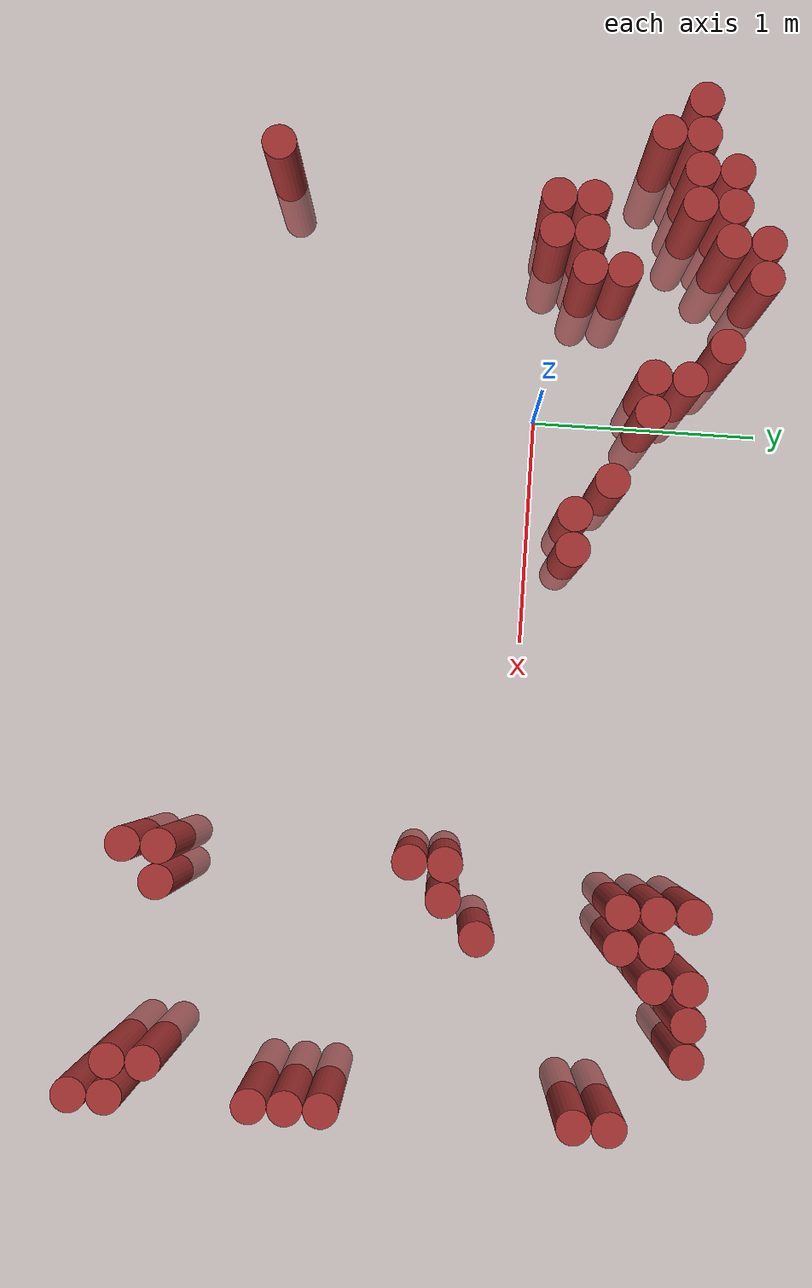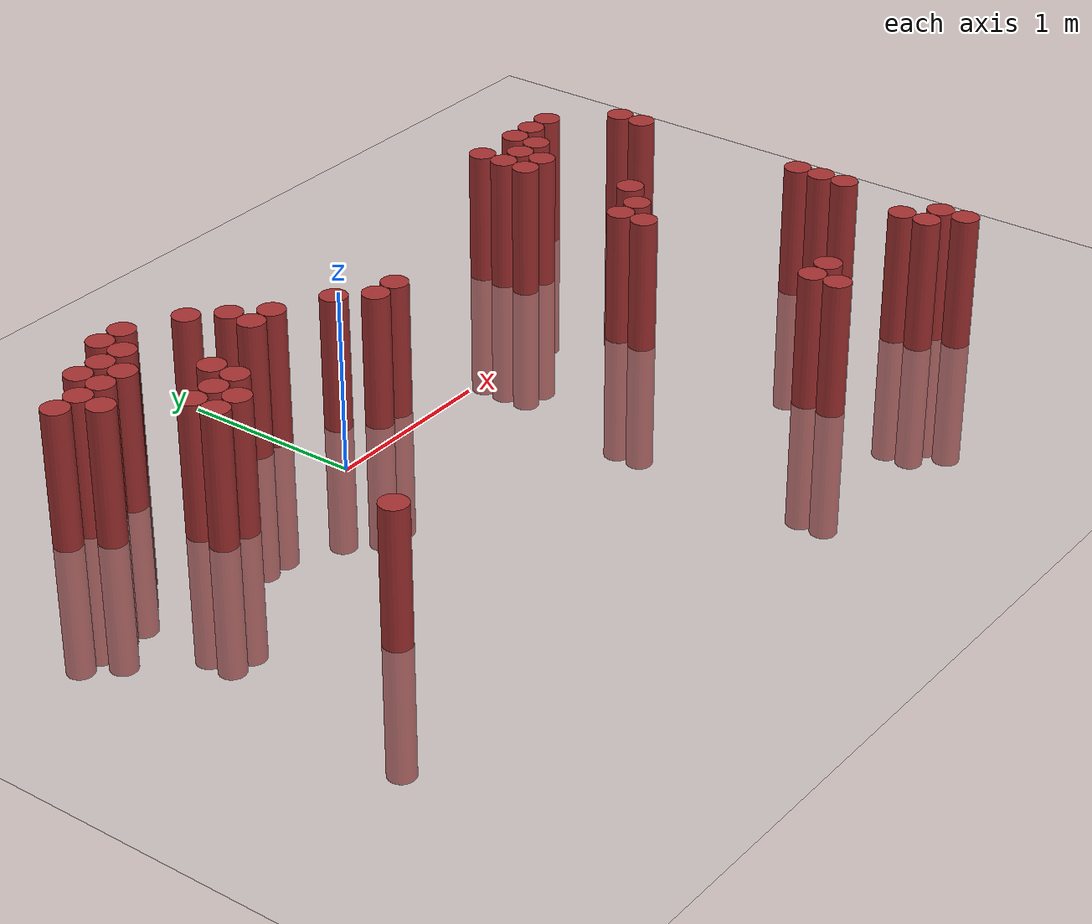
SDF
<sdf version="1.6">
 <world name="default">
  <model name="ground_plane">
   <static>1</static>
   <link name="link">
    <collision name="collision">
     <geometry><plane><normal>0 0 1</normal><size>100 100</size></plane></geometry>
     <surface><friction><ode><mu>100</mu><mu2>50</mu2></ode></friction></surface>
    </collision>
    <visual name="visual">
     <cast_shadows>0</cast_shadows>
     <geometry><plane><normal>0 0 1</normal><size>100 100</size></plane></geometry>
     <material>
      <script><uri>file://media/materials/scripts/gazebo.material</uri><name>Gazebo/Grey</name></script>
     </material>
    </visual>
   </link>
  </model>
  <model name="unit_cylinder_341">
   <static>1</static>
   <pose>-1.325000 0.625000 0.000000 0.000000 0.000000 0.000000</pose>
   <link name="link">
    <inertial>
     <mass>1</mass>
     <inertia><ixx>0.145833</ixx><ixy>0</ixy><ixz>0</ixz><iyy>0.145833</iyy><iyz>0</iyz><izz>0.125</izz></inertia>
    </inertial>
    <collision name="collision">
     <geometry><cylinder><radius>0.075000</radius><length>1.5</length></cylinder></geometry>
    </collision>
    <visual name="visual">
     <geometry><cylinder><radius>0.075000</radius><length>1.5</length></cylinder></geometry>
     <material>
      <ambient>0.648000 0.192000 0.192000 1</ambient>
      <diffuse>0.648000 0.192000 0.192000 1</diffuse>
     </material>
     <material>
      <script><name>Gazebo/Grey</name><uri>file://media/materials/scripts/gazebo.material</uri></script>
     </material>
    </visual>
   </link>
  </model>
  <model name="unit_cylinder_344">
   <static>1</static>
   <pose>-1.175000 0.475000 0.000000 0.000000 0.000000 0.000000</pose>
   <link name="link">
    <inertial>
     <mass>1</mass>
     <inertia><ixx>0.145833</ixx><ixy>0</ixy><ixz>0</ixz><iyy>0.145833</iyy><iyz>0</iyz><izz>0.125</izz></inertia>
    </inertial>
    <collision name="collision">
     <geometry><cylinder><radius>0.075000</radius><length>1.5</length></cylinder></geometry>
    </collision>
    <visual name="visual">
     <geometry><cylinder><radius>0.075000</radius><length>1.5</length></cylinder></geometry>
     <material>
      <ambient>0.648000 0.192000 0.192000 1</ambient>
      <diffuse>0.648000 0.192000 0.192000 1</diffuse>
     </material>
     <material>
      <script><name>Gazebo/Grey</name><uri>file://media/materials/scripts/gazebo.material</uri></script>
     </material>
    </visual>
   </link>
  </model>
  <model name="unit_cylinder_345">
   <static>1</static>
   <pose>-1.175000 0.625000 0.000000 0.000000 0.000000 0.000000</pose>
   <link name="link">
    <inertial>
     <mass>1</mass>
     <inertia><ixx>0.145833</ixx><ixy>0</ixy><ixz>0</ixz><iyy>0.145833</iyy><iyz>0</iyz><izz>0.125</izz></inertia>
    </inertial>
    <collision name="collision">
     <geometry><cylinder><radius>0.075000</radius><length>1.5</length></cylinder></geometry>
    </collision>
    <visual name="visual">
     <geometry><cylinder><radius>0.075000</radius><length>1.5</length></cylinder></geometry>
     <material>
      <ambient>0.648000 0.192000 0.192000 1</ambient>
      <diffuse>0.648000 0.192000 0.192000 1</diffuse>
     </material>
     <material>
      <script><name>Gazebo/Grey</name><uri>file://media/materials/scripts/gazebo.material</uri></script>
     </material>
    </visual>
   </link>
  </model>
  <model name="unit_cylinder_348">
   <static>1</static>
   <pose>-1.025000 -1.175000 0.000000 0.000000 0.000000 0.000000</pose>
   <link name="link">
    <inertial>
     <mass>1</mass>
     <inertia><ixx>0.145833</ixx><ixy>0</ixy><ixz>0</ixz><iyy>0.145833</iyy><iyz>0</iyz><izz>0.125</izz></inertia>
    </inertial>
    <collision name="collision">
     <geometry><cylinder><radius>0.075000</radius><length>1.5</length></cylinder></geometry>
    </collision>
    <visual name="visual">
     <geometry><cylinder><radius>0.075000</radius><length>1.5</length></cylinder></geometry>
     <material>
      <ambient>0.648000 0.192000 0.192000 1</ambient>
      <diffuse>0.648000 0.192000 0.192000 1</diffuse>
     </material>
     <material>
      <script><name>Gazebo/Grey</name><uri>file://media/materials/scripts/gazebo.material</uri></script>
     </material>
    </visual>
   </link>
  </model>
  <model name="unit_cylinder_349">
   <static>1</static>
   <pose>-1.025000 0.625000 0.000000 0.000000 0.000000 0.000000</pose>
   <link name="link">
    <inertial>
     <mass>1</mass>
     <inertia><ixx>0.145833</ixx><ixy>0</ixy><ixz>0</ixz><iyy>0.145833</iyy><iyz>0</iyz><izz>0.125</izz></inertia>
    </inertial>
    <collision name="collision">
     <geometry><cylinder><radius>0.075000</radius><length>1.5</length></cylinder></geometry>
    </collision>
    <visual name="visual">
     <geometry><cylinder><radius>0.075000</radius><length>1.5</length></cylinder></geometry>
     <material>
      <ambient>0.648000 0.192000 0.192000 1</ambient>
      <diffuse>0.648000 0.192000 0.192000 1</diffuse>
     </material>
     <material>
      <script><name>Gazebo/Grey</name><uri>file://media/materials/scripts/gazebo.material</uri></script>
     </material>
    </visual>
   </link>
  </model>
  <model name="unit_cylinder_350">
   <static>1</static>
   <pose>-1.025000 0.775000 0.000000 0.000000 0.000000 0.000000</pose>
   <link name="link">
    <inertial>
     <mass>1</mass>
     <inertia><ixx>0.145833</ixx><ixy>0</ixy><ixz>0</ixz><iyy>0.145833</iyy><iyz>0</iyz><izz>0.125</izz></inertia>
    </inertial>
    <collision name="collision">
     <geometry><cylinder><radius>0.075000</radius><length>1.5</length></cylinder></geometry>
    </collision>
    <visual name="visual">
     <geometry><cylinder><radius>0.075000</radius><length>1.5</length></cylinder></geometry>
     <material>
      <ambient>0.648000 0.192000 0.192000 1</ambient>
      <diffuse>0.648000 0.192000 0.192000 1</diffuse>
     </material>
     <material>
      <script><name>Gazebo/Grey</name><uri>file://media/materials/scripts/gazebo.material</uri></script>
     </material>
    </visual>
   </link>
  </model>
  <model name="unit_cylinder_353">
   <static>1</static>
   <pose>-0.875000 0.025000 0.000000 0.000000 0.000000 0.000000</pose>
   <link name="link">
    <inertial>
     <mass>1</mass>
     <inertia><ixx>0.145833</ixx><ixy>0</ixy><ixz>0</ixz><iyy>0.145833</iyy><iyz>0</iyz><izz>0.125</izz></inertia>
    </inertial>
    <collision name="collision">
     <geometry><cylinder><radius>0.075000</radius><length>1.5</length></cylinder></geometry>
    </collision>
    <visual name="visual">
     <geometry><cylinder><radius>0.075000</radius><length>1.5</length></cylinder></geometry>
     <material>
      <ambient>0.648000 0.192000 0.192000 1</ambient>
      <diffuse>0.648000 0.192000 0.192000 1</diffuse>
     </material>
     <material>
      <script><name>Gazebo/Grey</name><uri>file://media/materials/scripts/gazebo.material</uri></script>
     </material>
    </visual>
   </link>
  </model>
  <model name="unit_cylinder_354">
   <static>1</static>
   <pose>-0.875000 0.175000 0.000000 0.000000 0.000000 0.000000</pose>
   <link name="link">
    <inertial>
     <mass>1</mass>
     <inertia><ixx>0.145833</ixx><ixy>0</ixy><ixz>0</ixz><iyy>0.145833</iyy><iyz>0</iyz><izz>0.125</izz></inertia>
    </inertial>
    <collision name="collision">
     <geometry><cylinder><radius>0.075000</radius><length>1.5</length></cylinder></geometry>
    </collision>
    <visual name="visual">
     <geometry><cylinder><radius>0.075000</radius><length>1.5</length></cylinder></geometry>
     <material>
      <ambient>0.648000 0.192000 0.192000 1</ambient>
      <diffuse>0.648000 0.192000 0.192000 1</diffuse>
     </material>
     <material>
      <script><name>Gazebo/Grey</name><uri>file://media/materials/scripts/gazebo.material</uri></script>
     </material>
    </visual>
   </link>
  </model>
  <model name="unit_cylinder_355">
   <static>1</static>
   <pose>-0.875000 0.625000 0.000000 0.000000 0.000000 0.000000</pose>
   <link name="link">
    <inertial>
     <mass>1</mass>
     <inertia><ixx>0.145833</ixx><ixy>0</ixy><ixz>0</ixz><iyy>0.145833</iyy><iyz>0</iyz><izz>0.125</izz></inertia>
    </inertial>
    <collision name="collision">
     <geometry><cylinder><radius>0.075000</radius><length>1.5</length></cylinder></geometry>
    </collision>
    <visual name="visual">
     <geometry><cylinder><radius>0.075000</radius><length>1.5</length></cylinder></geometry>
     <material>
      <ambient>0.648000 0.192000 0.192000 1</ambient>
      <diffuse>0.648000 0.192000 0.192000 1</diffuse>
     </material>
     <material>
      <script><name>Gazebo/Grey</name><uri>file://media/materials/scripts/gazebo.material</uri></script>
     </material>
    </visual>
   </link>
  </model>
  <model name="unit_cylinder_356">
   <static>1</static>
   <pose>-0.875000 0.775000 0.000000 0.000000 0.000000 0.000000</pose>
   <link name="link">
    <inertial>
     <mass>1</mass>
     <inertia><ixx>0.145833</ixx><ixy>0</ixy><ixz>0</ixz><iyy>0.145833</iyy><iyz>0</iyz><izz>0.125</izz></inertia>
    </inertial>
    <collision name="collision">
     <geometry><cylinder><radius>0.075000</radius><length>1.5</length></cylinder></geometry>
    </collision>
    <visual name="visual">
     <geometry><cylinder><radius>0.075000</radius><length>1.5</length></cylinder></geometry>
     <material>
      <ambient>0.648000 0.192000 0.192000 1</ambient>
      <diffuse>0.648000 0.192000 0.192000 1</diffuse>
     </material>
     <material>
      <script><name>Gazebo/Grey</name><uri>file://media/materials/scripts/gazebo.material</uri></script>
     </material>
    </visual>
   </link>
  </model>
  <model name="unit_cylinder_358">
   <static>1</static>
   <pose>-0.725000 0.025000 0.000000 0.000000 0.000000 0.000000</pose>
   <link name="link">
    <inertial>
     <mass>1</mass>
     <inertia><ixx>0.145833</ixx><ixy>0</ixy><ixz>0</ixz><iyy>0.145833</iyy><iyz>0</iyz><izz>0.125</izz></inertia>
    </inertial>
    <collision name="collision">
     <geometry><cylinder><radius>0.075000</radius><length>1.5</length></cylinder></geometry>
    </collision>
    <visual name="visual">
     <geometry><cylinder><radius>0.075000</radius><length>1.5</length></cylinder></geometry>
     <material>
      <ambient>0.648000 0.192000 0.192000 1</ambient>
      <diffuse>0.648000 0.192000 0.192000 1</diffuse>
     </material>
     <material>
      <script><name>Gazebo/Grey</name><uri>file://media/materials/scripts/gazebo.material</uri></script>
     </material>
    </visual>
   </link>
  </model>
  <model name="unit_cylinder_359">
   <static>1</static>
   <pose>-0.725000 0.175000 0.000000 0.000000 0.000000 0.000000</pose>
   <link name="link">
    <inertial>
     <mass>1</mass>
     <inertia><ixx>0.145833</ixx><ixy>0</ixy><ixz>0</ixz><iyy>0.145833</iyy><iyz>0</iyz><izz>0.125</izz></inertia>
    </inertial>
    <collision name="collision">
     <geometry><cylinder><radius>0.075000</radius><length>1.5</length></cylinder></geometry>
    </collision>
    <visual name="visual">
     <geometry><cylinder><radius>0.075000</radius><length>1.5</length></cylinder></geometry>
     <material>
      <ambient>0.648000 0.192000 0.192000 1</ambient>
      <diffuse>0.648000 0.192000 0.192000 1</diffuse>
     </material>
     <material>
      <script><name>Gazebo/Grey</name><uri>file://media/materials/scripts/gazebo.material</uri></script>
     </material>
    </visual>
   </link>
  </model>
  <model name="unit_cylinder_360">
   <static>1</static>
   <pose>-0.725000 0.775000 0.000000 0.000000 0.000000 0.000000</pose>
   <link name="link">
    <inertial>
     <mass>1</mass>
     <inertia><ixx>0.145833</ixx><ixy>0</ixy><ixz>0</ixz><iyy>0.145833</iyy><iyz>0</iyz><izz>0.125</izz></inertia>
    </inertial>
    <collision name="collision">
     <geometry><cylinder><radius>0.075000</radius><length>1.5</length></cylinder></geometry>
    </collision>
    <visual name="visual">
     <geometry><cylinder><radius>0.075000</radius><length>1.5</length></cylinder></geometry>
     <material>
      <ambient>0.648000 0.192000 0.192000 1</ambient>
      <diffuse>0.648000 0.192000 0.192000 1</diffuse>
     </material>
     <material>
      <script><name>Gazebo/Grey</name><uri>file://media/materials/scripts/gazebo.material</uri></script>
     </material>
    </visual>
   </link>
  </model>
  <model name="unit_cylinder_361">
   <static>1</static>
   <pose>-0.725000 0.925000 0.000000 0.000000 0.000000 0.000000</pose>
   <link name="link">
    <inertial>
     <mass>1</mass>
     <inertia><ixx>0.145833</ixx><ixy>0</ixy><ixz>0</ixz><iyy>0.145833</iyy><iyz>0</iyz><izz>0.125</izz></inertia>
    </inertial>
    <collision name="collision">
     <geometry><cylinder><radius>0.075000</radius><length>1.5</length></cylinder></geometry>
    </collision>
    <visual name="visual">
     <geometry><cylinder><radius>0.075000</radius><length>1.5</length></cylinder></geometry>
     <material>
      <ambient>0.648000 0.192000 0.192000 1</ambient>
      <diffuse>0.648000 0.192000 0.192000 1</diffuse>
     </material>
     <material>
      <script><name>Gazebo/Grey</name><uri>file://media/materials/scripts/gazebo.material</uri></script>
     </material>
    </visual>
   </link>
  </model>
  <model name="unit_cylinder_363">
   <static>1</static>
   <pose>-0.575000 0.175000 0.000000 0.000000 0.000000 0.000000</pose>
   <link name="link">
    <inertial>
     <mass>1</mass>
     <inertia><ixx>0.145833</ixx><ixy>0</ixy><ixz>0</ixz><iyy>0.145833</iyy><iyz>0</iyz><izz>0.125</izz></inertia>
    </inertial>
    <collision name="collision">
     <geometry><cylinder><radius>0.075000</radius><length>1.5</length></cylinder></geometry>
    </collision>
    <visual name="visual">
     <geometry><cylinder><radius>0.075000</radius><length>1.5</length></cylinder></geometry>
     <material>
      <ambient>0.648000 0.192000 0.192000 1</ambient>
      <diffuse>0.648000 0.192000 0.192000 1</diffuse>
     </material>
     <material>
      <script><name>Gazebo/Grey</name><uri>file://media/materials/scripts/gazebo.material</uri></script>
     </material>
    </visual>
   </link>
  </model>
  <model name="unit_cylinder_364">
   <static>1</static>
   <pose>-0.575000 0.325000 0.000000 0.000000 0.000000 0.000000</pose>
   <link name="link">
    <inertial>
     <mass>1</mass>
     <inertia><ixx>0.145833</ixx><ixy>0</ixy><ixz>0</ixz><iyy>0.145833</iyy><iyz>0</iyz><izz>0.125</izz></inertia>
    </inertial>
    <collision name="collision">
     <geometry><cylinder><radius>0.075000</radius><length>1.5</length></cylinder></geometry>
    </collision>
    <visual name="visual">
     <geometry><cylinder><radius>0.075000</radius><length>1.5</length></cylinder></geometry>
     <material>
      <ambient>0.648000 0.192000 0.192000 1</ambient>
      <diffuse>0.648000 0.192000 0.192000 1</diffuse>
     </material>
     <material>
      <script><name>Gazebo/Grey</name><uri>file://media/materials/scripts/gazebo.material</uri></script>
     </material>
    </visual>
   </link>
  </model>
  <model name="unit_cylinder_365">
   <static>1</static>
   <pose>-0.575000 0.925000 0.000000 0.000000 0.000000 0.000000</pose>
   <link name="link">
    <inertial>
     <mass>1</mass>
     <inertia><ixx>0.145833</ixx><ixy>0</ixy><ixz>0</ixz><iyy>0.145833</iyy><iyz>0</iyz><izz>0.125</izz></inertia>
    </inertial>
    <collision name="collision">
     <geometry><cylinder><radius>0.075000</radius><length>1.5</length></cylinder></geometry>
    </collision>
    <visual name="visual">
     <geometry><cylinder><radius>0.075000</radius><length>1.5</length></cylinder></geometry>
     <material>
      <ambient>0.648000 0.192000 0.192000 1</ambient>
      <diffuse>0.648000 0.192000 0.192000 1</diffuse>
     </material>
     <material>
      <script><name>Gazebo/Grey</name><uri>file://media/materials/scripts/gazebo.material</uri></script>
     </material>
    </visual>
   </link>
  </model>
  <model name="unit_cylinder_373">
   <static>1</static>
   <pose>-0.275000 0.775000 0.000000 0.000000 0.000000 0.000000</pose>
   <link name="link">
    <inertial>
     <mass>1</mass>
     <inertia><ixx>0.145833</ixx><ixy>0</ixy><ixz>0</ixz><iyy>0.145833</iyy><iyz>0</iyz><izz>0.125</izz></inertia>
    </inertial>
    <collision name="collision">
     <geometry><cylinder><radius>0.075000</radius><length>1.5</length></cylinder></geometry>
    </collision>
    <visual name="visual">
     <geometry><cylinder><radius>0.075000</radius><length>1.5</length></cylinder></geometry>
     <material>
      <ambient>0.648000 0.192000 0.192000 1</ambient>
      <diffuse>0.648000 0.192000 0.192000 1</diffuse>
     </material>
     <material>
      <script><name>Gazebo/Grey</name><uri>file://media/materials/scripts/gazebo.material</uri></script>
     </material>
    </visual>
   </link>
  </model>
  <model name="unit_cylinder_375">
   <static>1</static>
   <pose>-0.125000 0.475000 0.000000 0.000000 0.000000 0.000000</pose>
   <link name="link">
    <inertial>
     <mass>1</mass>
     <inertia><ixx>0.145833</ixx><ixy>0</ixy><ixz>0</ixz><iyy>0.145833</iyy><iyz>0</iyz><izz>0.125</izz></inertia>
    </inertial>
    <collision name="collision">
     <geometry><cylinder><radius>0.075000</radius><length>1.5</length></cylinder></geometry>
    </collision>
    <visual name="visual">
     <geometry><cylinder><radius>0.075000</radius><length>1.5</length></cylinder></geometry>
     <material>
      <ambient>0.648000 0.192000 0.192000 1</ambient>
      <diffuse>0.648000 0.192000 0.192000 1</diffuse>
     </material>
     <material>
      <script><name>Gazebo/Grey</name><uri>file://media/materials/scripts/gazebo.material</uri></script>
     </material>
    </visual>
   </link>
  </model>
  <model name="unit_cylinder_376">
   <static>1</static>
   <pose>-0.125000 0.625000 0.000000 0.000000 0.000000 0.000000</pose>
   <link name="link">
    <inertial>
     <mass>1</mass>
     <inertia><ixx>0.145833</ixx><ixy>0</ixy><ixz>0</ixz><iyy>0.145833</iyy><iyz>0</iyz><izz>0.125</izz></inertia>
    </inertial>
    <collision name="collision">
     <geometry><cylinder><radius>0.075000</radius><length>1.5</length></cylinder></geometry>
    </collision>
    <visual name="visual">
     <geometry><cylinder><radius>0.075000</radius><length>1.5</length></cylinder></geometry>
     <material>
      <ambient>0.648000 0.192000 0.192000 1</ambient>
      <diffuse>0.648000 0.192000 0.192000 1</diffuse>
     </material>
     <material>
      <script><name>Gazebo/Grey</name><uri>file://media/materials/scripts/gazebo.material</uri></script>
     </material>
    </visual>
   </link>
  </model>
  <model name="unit_cylinder_378">
   <static>1</static>
   <pose>0.025000 0.475000 0.000000 0.000000 0.000000 0.000000</pose>
   <link name="link">
    <inertial>
     <mass>1</mass>
     <inertia><ixx>0.145833</ixx><ixy>0</ixy><ixz>0</ixz><iyy>0.145833</iyy><iyz>0</iyz><izz>0.125</izz></inertia>
    </inertial>
    <collision name="collision">
     <geometry><cylinder><radius>0.075000</radius><length>1.5</length></cylinder></geometry>
    </collision>
    <visual name="visual">
     <geometry><cylinder><radius>0.075000</radius><length>1.5</length></cylinder></geometry>
     <material>
      <ambient>0.648000 0.192000 0.192000 1</ambient>
      <diffuse>0.648000 0.192000 0.192000 1</diffuse>
     </material>
     <material>
      <script><name>Gazebo/Grey</name><uri>file://media/materials/scripts/gazebo.material</uri></script>
     </material>
    </visual>
   </link>
  </model>
  <model name="unit_cylinder_386">
   <static>1</static>
   <pose>0.325000 0.325000 0.000000 0.000000 0.000000 0.000000</pose>
   <link name="link">
    <inertial>
     <mass>1</mass>
     <inertia><ixx>0.145833</ixx><ixy>0</ixy><ixz>0</ixz><iyy>0.145833</iyy><iyz>0</iyz><izz>0.125</izz></inertia>
    </inertial>
    <collision name="collision">
     <geometry><cylinder><radius>0.075000</radius><length>1.5</length></cylinder></geometry>
    </collision>
    <visual name="visual">
     <geometry><cylinder><radius>0.075000</radius><length>1.5</length></cylinder></geometry>
     <material>
      <ambient>0.648000 0.192000 0.192000 1</ambient>
      <diffuse>0.648000 0.192000 0.192000 1</diffuse>
     </material>
     <material>
      <script><name>Gazebo/Grey</name><uri>file://media/materials/scripts/gazebo.material</uri></script>
     </material>
    </visual>
   </link>
  </model>
  <model name="unit_cylinder_393">
   <static>1</static>
   <pose>0.475000 0.175000 0.000000 0.000000 0.000000 0.000000</pose>
   <link name="link">
    <inertial>
     <mass>1</mass>
     <inertia><ixx>0.145833</ixx><ixy>0</ixy><ixz>0</ixz><iyy>0.145833</iyy><iyz>0</iyz><izz>0.125</izz></inertia>
    </inertial>
    <collision name="collision">
     <geometry><cylinder><radius>0.075000</radius><length>1.5</length></cylinder></geometry>
    </collision>
    <visual name="visual">
     <geometry><cylinder><radius>0.075000</radius><length>1.5</length></cylinder></geometry>
     <material>
      <ambient>0.648000 0.192000 0.192000 1</ambient>
      <diffuse>0.648000 0.192000 0.192000 1</diffuse>
     </material>
     <material>
      <script><name>Gazebo/Grey</name><uri>file://media/materials/scripts/gazebo.material</uri></script>
     </material>
    </visual>
   </link>
  </model>
  <model name="unit_cylinder_400">
   <static>1</static>
   <pose>0.625000 0.175000 0.000000 0.000000 0.000000 0.000000</pose>
   <link name="link">
    <inertial>
     <mass>1</mass>
     <inertia><ixx>0.145833</ixx><ixy>0</ixy><ixz>0</ixz><iyy>0.145833</iyy><iyz>0</iyz><izz>0.125</izz></inertia>
    </inertial>
    <collision name="collision">
     <geometry><cylinder><radius>0.075000</radius><length>1.5</length></cylinder></geometry>
    </collision>
    <visual name="visual">
     <geometry><cylinder><radius>0.075000</radius><length>1.5</length></cylinder></geometry>
     <material>
      <ambient>0.648000 0.192000 0.192000 1</ambient>
      <diffuse>0.648000 0.192000 0.192000 1</diffuse>
     </material>
     <material>
      <script><name>Gazebo/Grey</name><uri>file://media/materials/scripts/gazebo.material</uri></script>
     </material>
    </visual>
   </link>
  </model>
  <model name="unit_cylinder_420">
   <static>1</static>
   <pose>1.975000 -1.625000 0.000000 0.000000 0.000000 0.000000</pose>
   <link name="link">
    <inertial>
     <mass>1</mass>
     <inertia><ixx>0.145833</ixx><ixy>0</ixy><ixz>0</ixz><iyy>0.145833</iyy><iyz>0</iyz><izz>0.125</izz></inertia>
    </inertial>
    <collision name="collision">
     <geometry><cylinder><radius>0.075000</radius><length>1.5</length></cylinder></geometry>
    </collision>
    <visual name="visual">
     <geometry><cylinder><radius>0.075000</radius><length>1.5</length></cylinder></geometry>
     <material>
      <ambient>0.648000 0.192000 0.192000 1</ambient>
      <diffuse>0.648000 0.192000 0.192000 1</diffuse>
     </material>
     <material>
      <script><name>Gazebo/Grey</name><uri>file://media/materials/scripts/gazebo.material</uri></script>
     </material>
    </visual>
   </link>
  </model>
  <model name="unit_cylinder_421">
   <static>1</static>
   <pose>1.975000 -1.475000 0.000000 0.000000 0.000000 0.000000</pose>
   <link name="link">
    <inertial>
     <mass>1</mass>
     <inertia><ixx>0.145833</ixx><ixy>0</ixy><ixz>0</ixz><iyy>0.145833</iyy><iyz>0</iyz><izz>0.125</izz></inertia>
    </inertial>
    <collision name="collision">
     <geometry><cylinder><radius>0.075000</radius><length>1.5</length></cylinder></geometry>
    </collision>
    <visual name="visual">
     <geometry><cylinder><radius>0.075000</radius><length>1.5</length></cylinder></geometry>
     <material>
      <ambient>0.648000 0.192000 0.192000 1</ambient>
      <diffuse>0.648000 0.192000 0.192000 1</diffuse>
     </material>
     <material>
      <script><name>Gazebo/Grey</name><uri>file://media/materials/scripts/gazebo.material</uri></script>
     </material>
    </visual>
   </link>
  </model>
  <model name="unit_cylinder_422">
   <static>1</static>
   <pose>1.975000 -0.425000 0.000000 0.000000 0.000000 0.000000</pose>
   <link name="link">
    <inertial>
     <mass>1</mass>
     <inertia><ixx>0.145833</ixx><ixy>0</ixy><ixz>0</ixz><iyy>0.145833</iyy><iyz>0</iyz><izz>0.125</izz></inertia>
    </inertial>
    <collision name="collision">
     <geometry><cylinder><radius>0.075000</radius><length>1.5</length></cylinder></geometry>
    </collision>
    <visual name="visual">
     <geometry><cylinder><radius>0.075000</radius><length>1.5</length></cylinder></geometry>
     <material>
      <ambient>0.648000 0.192000 0.192000 1</ambient>
      <diffuse>0.648000 0.192000 0.192000 1</diffuse>
     </material>
     <material>
      <script><name>Gazebo/Grey</name><uri>file://media/materials/scripts/gazebo.material</uri></script>
     </material>
    </visual>
   </link>
  </model>
  <model name="unit_cylinder_423">
   <static>1</static>
   <pose>1.975000 -0.275000 0.000000 0.000000 0.000000 0.000000</pose>
   <link name="link">
    <inertial>
     <mass>1</mass>
     <inertia><ixx>0.145833</ixx><ixy>0</ixy><ixz>0</ixz><iyy>0.145833</iyy><iyz>0</iyz><izz>0.125</izz></inertia>
    </inertial>
    <collision name="collision">
     <geometry><cylinder><radius>0.075000</radius><length>1.5</length></cylinder></geometry>
    </collision>
    <visual name="visual">
     <geometry><cylinder><radius>0.075000</radius><length>1.5</length></cylinder></geometry>
     <material>
      <ambient>0.648000 0.192000 0.192000 1</ambient>
      <diffuse>0.648000 0.192000 0.192000 1</diffuse>
     </material>
     <material>
      <script><name>Gazebo/Grey</name><uri>file://media/materials/scripts/gazebo.material</uri></script>
     </material>
    </visual>
   </link>
  </model>
  <model name="unit_cylinder_424">
   <static>1</static>
   <pose>2.125000 -1.475000 0.000000 0.000000 0.000000 0.000000</pose>
   <link name="link">
    <inertial>
     <mass>1</mass>
     <inertia><ixx>0.145833</ixx><ixy>0</ixy><ixz>0</ixz><iyy>0.145833</iyy><iyz>0</iyz><izz>0.125</izz></inertia>
    </inertial>
    <collision name="collision">
     <geometry><cylinder><radius>0.075000</radius><length>1.5</length></cylinder></geometry>
    </collision>
    <visual name="visual">
     <geometry><cylinder><radius>0.075000</radius><length>1.5</length></cylinder></geometry>
     <material>
      <ambient>0.648000 0.192000 0.192000 1</ambient>
      <diffuse>0.648000 0.192000 0.192000 1</diffuse>
     </material>
     <material>
      <script><name>Gazebo/Grey</name><uri>file://media/materials/scripts/gazebo.material</uri></script>
     </material>
    </visual>
   </link>
  </model>
  <model name="unit_cylinder_425">
   <static>1</static>
   <pose>2.125000 -0.275000 0.000000 0.000000 0.000000 0.000000</pose>
   <link name="link">
    <inertial>
     <mass>1</mass>
     <inertia><ixx>0.145833</ixx><ixy>0</ixy><ixz>0</ixz><iyy>0.145833</iyy><iyz>0</iyz><izz>0.125</izz></inertia>
    </inertial>
    <collision name="collision">
     <geometry><cylinder><radius>0.075000</radius><length>1.5</length></cylinder></geometry>
    </collision>
    <visual name="visual">
     <geometry><cylinder><radius>0.075000</radius><length>1.5</length></cylinder></geometry>
     <material>
      <ambient>0.648000 0.192000 0.192000 1</ambient>
      <diffuse>0.648000 0.192000 0.192000 1</diffuse>
     </material>
     <material>
      <script><name>Gazebo/Grey</name><uri>file://media/materials/scripts/gazebo.material</uri></script>
     </material>
    </visual>
   </link>
  </model>
  <model name="unit_cylinder_426">
   <static>1</static>
   <pose>2.125000 0.475000 0.000000 0.000000 0.000000 0.000000</pose>
   <link name="link">
    <inertial>
     <mass>1</mass>
     <inertia><ixx>0.145833</ixx><ixy>0</ixy><ixz>0</ixz><iyy>0.145833</iyy><iyz>0</iyz><izz>0.125</izz></inertia>
    </inertial>
    <collision name="collision">
     <geometry><cylinder><radius>0.075000</radius><length>1.5</length></cylinder></geometry>
    </collision>
    <visual name="visual">
     <geometry><cylinder><radius>0.075000</radius><length>1.5</length></cylinder></geometry>
     <material>
      <ambient>0.648000 0.192000 0.192000 1</ambient>
      <diffuse>0.648000 0.192000 0.192000 1</diffuse>
     </material>
     <material>
      <script><name>Gazebo/Grey</name><uri>file://media/materials/scripts/gazebo.material</uri></script>
     </material>
    </visual>
   </link>
  </model>
  <model name="unit_cylinder_427">
   <static>1</static>
   <pose>2.125000 0.625000 0.000000 0.000000 0.000000 0.000000</pose>
   <link name="link">
    <inertial>
     <mass>1</mass>
     <inertia><ixx>0.145833</ixx><ixy>0</ixy><ixz>0</ixz><iyy>0.145833</iyy><iyz>0</iyz><izz>0.125</izz></inertia>
    </inertial>
    <collision name="collision">
     <geometry><cylinder><radius>0.075000</radius><length>1.5</length></cylinder></geometry>
    </collision>
    <visual name="visual">
     <geometry><cylinder><radius>0.075000</radius><length>1.5</length></cylinder></geometry>
     <material>
      <ambient>0.648000 0.192000 0.192000 1</ambient>
      <diffuse>0.648000 0.192000 0.192000 1</diffuse>
     </material>
     <material>
      <script><name>Gazebo/Grey</name><uri>file://media/materials/scripts/gazebo.material</uri></script>
     </material>
    </visual>
   </link>
  </model>
  <model name="unit_cylinder_428">
   <static>1</static>
   <pose>2.125000 0.775000 0.000000 0.000000 0.000000 0.000000</pose>
   <link name="link">
    <inertial>
     <mass>1</mass>
     <inertia><ixx>0.145833</ixx><ixy>0</ixy><ixz>0</ixz><iyy>0.145833</iyy><iyz>0</iyz><izz>0.125</izz></inertia>
    </inertial>
    <collision name="collision">
     <geometry><cylinder><radius>0.075000</radius><length>1.5</length></cylinder></geometry>
    </collision>
    <visual name="visual">
     <geometry><cylinder><radius>0.075000</radius><length>1.5</length></cylinder></geometry>
     <material>
      <ambient>0.648000 0.192000 0.192000 1</ambient>
      <diffuse>0.648000 0.192000 0.192000 1</diffuse>
     </material>
     <material>
      <script><name>Gazebo/Grey</name><uri>file://media/materials/scripts/gazebo.material</uri></script>
     </material>
    </visual>
   </link>
  </model>
  <model name="unit_cylinder_430">
   <static>1</static>
   <pose>2.275000 -0.125000 0.000000 0.000000 0.000000 0.000000</pose>
   <link name="link">
    <inertial>
     <mass>1</mass>
     <inertia><ixx>0.145833</ixx><ixy>0</ixy><ixz>0</ixz><iyy>0.145833</iyy><iyz>0</iyz><izz>0.125</izz></inertia>
    </inertial>
    <collision name="collision">
     <geometry><cylinder><radius>0.075000</radius><length>1.5</length></cylinder></geometry>
    </collision>
    <visual name="visual">
     <geometry><cylinder><radius>0.075000</radius><length>1.5</length></cylinder></geometry>
     <material>
      <ambient>0.648000 0.192000 0.192000 1</ambient>
      <diffuse>0.648000 0.192000 0.192000 1</diffuse>
     </material>
     <material>
      <script><name>Gazebo/Grey</name><uri>file://media/materials/scripts/gazebo.material</uri></script>
     </material>
    </visual>
   </link>
  </model>
  <model name="unit_cylinder_431">
   <static>1</static>
   <pose>2.275000 0.475000 0.000000 0.000000 0.000000 0.000000</pose>
   <link name="link">
    <inertial>
     <mass>1</mass>
     <inertia><ixx>0.145833</ixx><ixy>0</ixy><ixz>0</ixz><iyy>0.145833</iyy><iyz>0</iyz><izz>0.125</izz></inertia>
    </inertial>
    <collision name="collision">
     <geometry><cylinder><radius>0.075000</radius><length>1.5</length></cylinder></geometry>
    </collision>
    <visual name="visual">
     <geometry><cylinder><radius>0.075000</radius><length>1.5</length></cylinder></geometry>
     <material>
      <ambient>0.648000 0.192000 0.192000 1</ambient>
      <diffuse>0.648000 0.192000 0.192000 1</diffuse>
     </material>
     <material>
      <script><name>Gazebo/Grey</name><uri>file://media/materials/scripts/gazebo.material</uri></script>
     </material>
    </visual>
   </link>
  </model>
  <model name="unit_cylinder_432">
   <static>1</static>
   <pose>2.275000 0.625000 0.000000 0.000000 0.000000 0.000000</pose>
   <link name="link">
    <inertial>
     <mass>1</mass>
     <inertia><ixx>0.145833</ixx><ixy>0</ixy><ixz>0</ixz><iyy>0.145833</iyy><iyz>0</iyz><izz>0.125</izz></inertia>
    </inertial>
    <collision name="collision">
     <geometry><cylinder><radius>0.075000</radius><length>1.5</length></cylinder></geometry>
    </collision>
    <visual name="visual">
     <geometry><cylinder><radius>0.075000</radius><length>1.5</length></cylinder></geometry>
     <material>
      <ambient>0.648000 0.192000 0.192000 1</ambient>
      <diffuse>0.648000 0.192000 0.192000 1</diffuse>
     </material>
     <material>
      <script><name>Gazebo/Grey</name><uri>file://media/materials/scripts/gazebo.material</uri></script>
     </material>
    </visual>
   </link>
  </model>
  <model name="unit_cylinder_437">
   <static>1</static>
   <pose>2.425000 0.625000 0.000000 0.000000 0.000000 0.000000</pose>
   <link name="link">
    <inertial>
     <mass>1</mass>
     <inertia><ixx>0.145833</ixx><ixy>0</ixy><ixz>0</ixz><iyy>0.145833</iyy><iyz>0</iyz><izz>0.125</izz></inertia>
    </inertial>
    <collision name="collision">
     <geometry><cylinder><radius>0.075000</radius><length>1.5</length></cylinder></geometry>
    </collision>
    <visual name="visual">
     <geometry><cylinder><radius>0.075000</radius><length>1.5</length></cylinder></geometry>
     <material>
      <ambient>0.648000 0.192000 0.192000 1</ambient>
      <diffuse>0.648000 0.192000 0.192000 1</diffuse>
     </material>
     <material>
      <script><name>Gazebo/Grey</name><uri>file://media/materials/scripts/gazebo.material</uri></script>
     </material>
    </visual>
   </link>
  </model>
  <model name="unit_cylinder_438">
   <static>1</static>
   <pose>2.425000 0.775000 0.000000 0.000000 0.000000 0.000000</pose>
   <link name="link">
    <inertial>
     <mass>1</mass>
     <inertia><ixx>0.145833</ixx><ixy>0</ixy><ixz>0</ixz><iyy>0.145833</iyy><iyz>0</iyz><izz>0.125</izz></inertia>
    </inertial>
    <collision name="collision">
     <geometry><cylinder><radius>0.075000</radius><length>1.5</length></cylinder></geometry>
    </collision>
    <visual name="visual">
     <geometry><cylinder><radius>0.075000</radius><length>1.5</length></cylinder></geometry>
     <material>
      <ambient>0.648000 0.192000 0.192000 1</ambient>
      <diffuse>0.648000 0.192000 0.192000 1</diffuse>
     </material>
     <material>
      <script><name>Gazebo/Grey</name><uri>file://media/materials/scripts/gazebo.material</uri></script>
     </material>
    </visual>
   </link>
  </model>
  <model name="unit_cylinder_445">
   <static>1</static>
   <pose>2.575000 0.775000 0.000000 0.000000 0.000000 0.000000</pose>
   <link name="link">
    <inertial>
     <mass>1</mass>
     <inertia><ixx>0.145833</ixx><ixy>0</ixy><ixz>0</ixz><iyy>0.145833</iyy><iyz>0</iyz><izz>0.125</izz></inertia>
    </inertial>
    <collision name="collision">
     <geometry><cylinder><radius>0.075000</radius><length>1.5</length></cylinder></geometry>
    </collision>
    <visual name="visual">
     <geometry><cylinder><radius>0.075000</radius><length>1.5</length></cylinder></geometry>
     <material>
      <ambient>0.648000 0.192000 0.192000 1</ambient>
      <diffuse>0.648000 0.192000 0.192000 1</diffuse>
     </material>
     <material>
      <script><name>Gazebo/Grey</name><uri>file://media/materials/scripts/gazebo.material</uri></script>
     </material>
    </visual>
   </link>
  </model>
  <model name="unit_cylinder_448">
   <static>1</static>
   <pose>2.725000 0.775000 0.000000 0.000000 0.000000 0.000000</pose>
   <link name="link">
    <inertial>
     <mass>1</mass>
     <inertia><ixx>0.145833</ixx><ixy>0</ixy><ixz>0</ixz><iyy>0.145833</iyy><iyz>0</iyz><izz>0.125</izz></inertia>
    </inertial>
    <collision name="collision">
     <geometry><cylinder><radius>0.075000</radius><length>1.5</length></cylinder></geometry>
    </collision>
    <visual name="visual">
     <geometry><cylinder><radius>0.075000</radius><length>1.5</length></cylinder></geometry>
     <material>
      <ambient>0.648000 0.192000 0.192000 1</ambient>
      <diffuse>0.648000 0.192000 0.192000 1</diffuse>
     </material>
     <material>
      <script><name>Gazebo/Grey</name><uri>file://media/materials/scripts/gazebo.material</uri></script>
     </material>
    </visual>
   </link>
  </model>
  <model name="unit_cylinder_450">
   <static>1</static>
   <pose>2.875000 -1.625000 0.000000 0.000000 0.000000 0.000000</pose>
   <link name="link">
    <inertial>
     <mass>1</mass>
     <inertia><ixx>0.145833</ixx><ixy>0</ixy><ixz>0</ixz><iyy>0.145833</iyy><iyz>0</iyz><izz>0.125</izz></inertia>
    </inertial>
    <collision name="collision">
     <geometry><cylinder><radius>0.075000</radius><length>1.5</length></cylinder></geometry>
    </collision>
    <visual name="visual">
     <geometry><cylinder><radius>0.075000</radius><length>1.5</length></cylinder></geometry>
     <material>
      <ambient>0.648000 0.192000 0.192000 1</ambient>
      <diffuse>0.648000 0.192000 0.192000 1</diffuse>
     </material>
     <material>
      <script><name>Gazebo/Grey</name><uri>file://media/materials/scripts/gazebo.material</uri></script>
     </material>
    </visual>
   </link>
  </model>
  <model name="unit_cylinder_451">
   <static>1</static>
   <pose>2.875000 -1.475000 0.000000 0.000000 0.000000 0.000000</pose>
   <link name="link">
    <inertial>
     <mass>1</mass>
     <inertia><ixx>0.145833</ixx><ixy>0</ixy><ixz>0</ixz><iyy>0.145833</iyy><iyz>0</iyz><izz>0.125</izz></inertia>
    </inertial>
    <collision name="collision">
     <geometry><cylinder><radius>0.075000</radius><length>1.5</length></cylinder></geometry>
    </collision>
    <visual name="visual">
     <geometry><cylinder><radius>0.075000</radius><length>1.5</length></cylinder></geometry>
     <material>
      <ambient>0.648000 0.192000 0.192000 1</ambient>
      <diffuse>0.648000 0.192000 0.192000 1</diffuse>
     </material>
     <material>
      <script><name>Gazebo/Grey</name><uri>file://media/materials/scripts/gazebo.material</uri></script>
     </material>
    </visual>
   </link>
  </model>
  <model name="unit_cylinder_455">
   <static>1</static>
   <pose>3.025000 -1.775000 0.000000 0.000000 0.000000 0.000000</pose>
   <link name="link">
    <inertial>
     <mass>1</mass>
     <inertia><ixx>0.145833</ixx><ixy>0</ixy><ixz>0</ixz><iyy>0.145833</iyy><iyz>0</iyz><izz>0.125</izz></inertia>
    </inertial>
    <collision name="collision">
     <geometry><cylinder><radius>0.075000</radius><length>1.5</length></cylinder></geometry>
    </collision>
    <visual name="visual">
     <geometry><cylinder><radius>0.075000</radius><length>1.5</length></cylinder></geometry>
     <material>
      <ambient>0.648000 0.192000 0.192000 1</ambient>
      <diffuse>0.648000 0.192000 0.192000 1</diffuse>
     </material>
     <material>
      <script><name>Gazebo/Grey</name><uri>file://media/materials/scripts/gazebo.material</uri></script>
     </material>
    </visual>
   </link>
  </model>
  <model name="unit_cylinder_456">
   <static>1</static>
   <pose>3.025000 -1.625000 0.000000 0.000000 0.000000 0.000000</pose>
   <link name="link">
    <inertial>
     <mass>1</mass>
     <inertia><ixx>0.145833</ixx><ixy>0</ixy><ixz>0</ixz><iyy>0.145833</iyy><iyz>0</iyz><izz>0.125</izz></inertia>
    </inertial>
    <collision name="collision">
     <geometry><cylinder><radius>0.075000</radius><length>1.5</length></cylinder></geometry>
    </collision>
    <visual name="visual">
     <geometry><cylinder><radius>0.075000</radius><length>1.5</length></cylinder></geometry>
     <material>
      <ambient>0.648000 0.192000 0.192000 1</ambient>
      <diffuse>0.648000 0.192000 0.192000 1</diffuse>
     </material>
     <material>
      <script><name>Gazebo/Grey</name><uri>file://media/materials/scripts/gazebo.material</uri></script>
     </material>
    </visual>
   </link>
  </model>
  <model name="unit_cylinder_457">
   <static>1</static>
   <pose>3.025000 -1.025000 0.000000 0.000000 0.000000 0.000000</pose>
   <link name="link">
    <inertial>
     <mass>1</mass>
     <inertia><ixx>0.145833</ixx><ixy>0</ixy><ixz>0</ixz><iyy>0.145833</iyy><iyz>0</iyz><izz>0.125</izz></inertia>
    </inertial>
    <collision name="collision">
     <geometry><cylinder><radius>0.075000</radius><length>1.5</length></cylinder></geometry>
    </collision>
    <visual name="visual">
     <geometry><cylinder><radius>0.075000</radius><length>1.5</length></cylinder></geometry>
     <material>
      <ambient>0.648000 0.192000 0.192000 1</ambient>
      <diffuse>0.648000 0.192000 0.192000 1</diffuse>
     </material>
     <material>
      <script><name>Gazebo/Grey</name><uri>file://media/materials/scripts/gazebo.material</uri></script>
     </material>
    </visual>
   </link>
  </model>
  <model name="unit_cylinder_458">
   <static>1</static>
   <pose>3.025000 -0.875000 0.000000 0.000000 0.000000 0.000000</pose>
   <link name="link">
    <inertial>
     <mass>1</mass>
     <inertia><ixx>0.145833</ixx><ixy>0</ixy><ixz>0</ixz><iyy>0.145833</iyy><iyz>0</iyz><izz>0.125</izz></inertia>
    </inertial>
    <collision name="collision">
     <geometry><cylinder><radius>0.075000</radius><length>1.5</length></cylinder></geometry>
    </collision>
    <visual name="visual">
     <geometry><cylinder><radius>0.075000</radius><length>1.5</length></cylinder></geometry>
     <material>
      <ambient>0.648000 0.192000 0.192000 1</ambient>
      <diffuse>0.648000 0.192000 0.192000 1</diffuse>
     </material>
     <material>
      <script><name>Gazebo/Grey</name><uri>file://media/materials/scripts/gazebo.material</uri></script>
     </material>
    </visual>
   </link>
  </model>
  <model name="unit_cylinder_459">
   <static>1</static>
   <pose>3.025000 -0.725000 0.000000 0.000000 0.000000 0.000000</pose>
   <link name="link">
    <inertial>
     <mass>1</mass>
     <inertia><ixx>0.145833</ixx><ixy>0</ixy><ixz>0</ixz><iyy>0.145833</iyy><iyz>0</iyz><izz>0.125</izz></inertia>
    </inertial>
    <collision name="collision">
     <geometry><cylinder><radius>0.075000</radius><length>1.5</length></cylinder></geometry>
    </collision>
    <visual name="visual">
     <geometry><cylinder><radius>0.075000</radius><length>1.5</length></cylinder></geometry>
     <material>
      <ambient>0.648000 0.192000 0.192000 1</ambient>
      <diffuse>0.648000 0.192000 0.192000 1</diffuse>
     </material>
     <material>
      <script><name>Gazebo/Grey</name><uri>file://media/materials/scripts/gazebo.material</uri></script>
     </material>
    </visual>
   </link>
  </model>
  <model name="unit_cylinder_460">
   <static>1</static>
   <pose>3.025000 0.325000 0.000000 0.000000 0.000000 0.000000</pose>
   <link name="link">
    <inertial>
     <mass>1</mass>
     <inertia><ixx>0.145833</ixx><ixy>0</ixy><ixz>0</ixz><iyy>0.145833</iyy><iyz>0</iyz><izz>0.125</izz></inertia>
    </inertial>
    <collision name="collision">
     <geometry><cylinder><radius>0.075000</radius><length>1.5</length></cylinder></geometry>
    </collision>
    <visual name="visual">
     <geometry><cylinder><radius>0.075000</radius><length>1.5</length></cylinder></geometry>
     <material>
      <ambient>0.648000 0.192000 0.192000 1</ambient>
      <diffuse>0.648000 0.192000 0.192000 1</diffuse>
     </material>
     <material>
      <script><name>Gazebo/Grey</name><uri>file://media/materials/scripts/gazebo.material</uri></script>
     </material>
    </visual>
   </link>
  </model>
  <model name="unit_cylinder_461">
   <static>1</static>
   <pose>3.025000 0.475000 0.000000 0.000000 0.000000 0.000000</pose>
   <link name="link">
    <inertial>
     <mass>1</mass>
     <inertia><ixx>0.145833</ixx><ixy>0</ixy><ixz>0</ixz><iyy>0.145833</iyy><iyz>0</iyz><izz>0.125</izz></inertia>
    </inertial>
    <collision name="collision">
     <geometry><cylinder><radius>0.075000</radius><length>1.5</length></cylinder></geometry>
    </collision>
    <visual name="visual">
     <geometry><cylinder><radius>0.075000</radius><length>1.5</length></cylinder></geometry>
     <material>
      <ambient>0.648000 0.192000 0.192000 1</ambient>
      <diffuse>0.648000 0.192000 0.192000 1</diffuse>
     </material>
     <material>
      <script><name>Gazebo/Grey</name><uri>file://media/materials/scripts/gazebo.material</uri></script>
     </material>
    </visual>
   </link>
  </model>
 </world>
</sdf>
